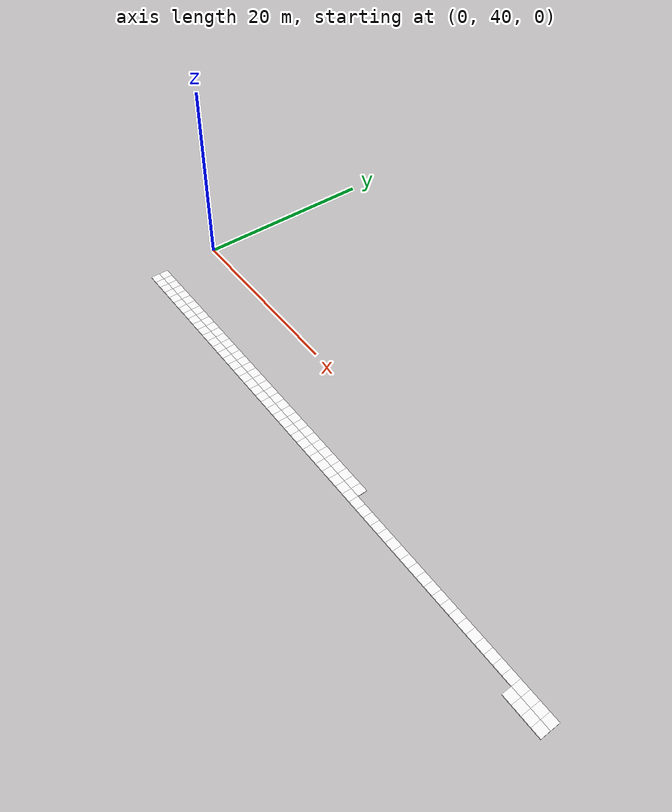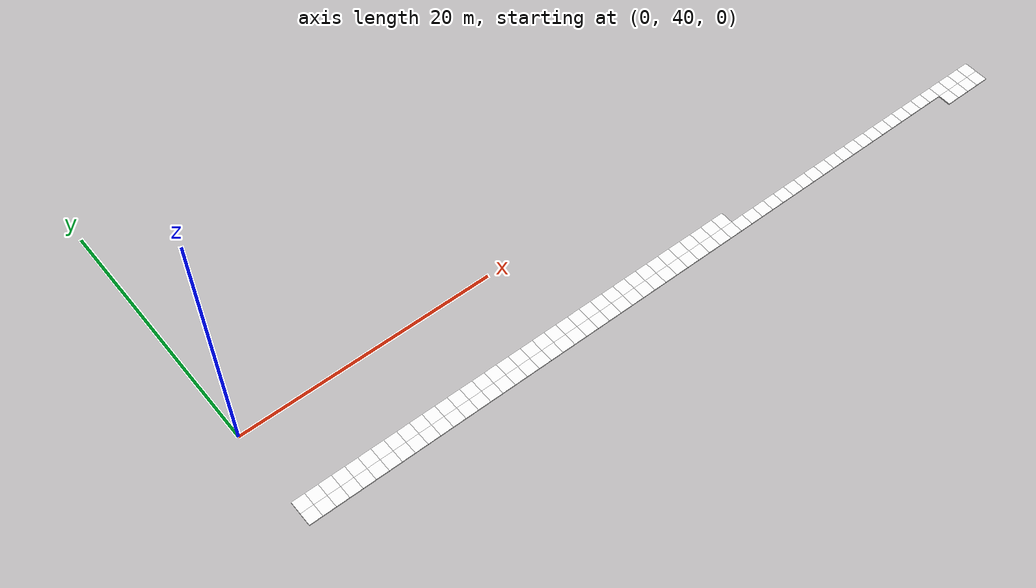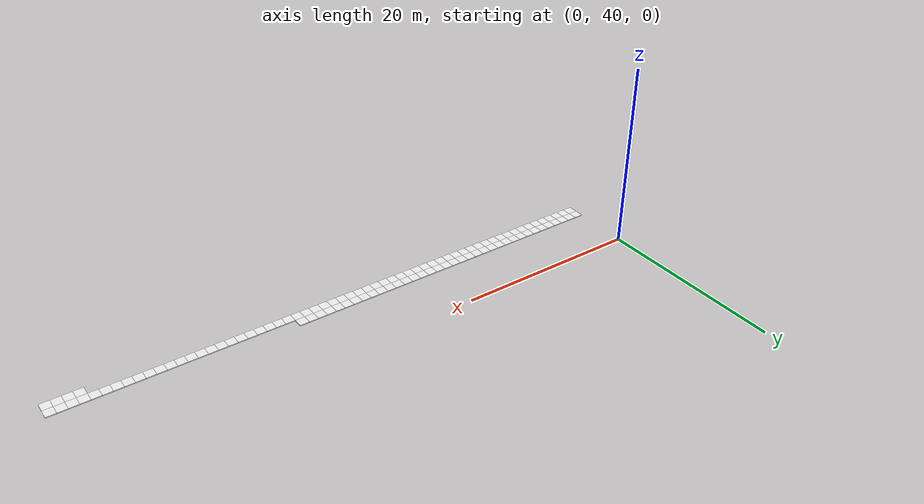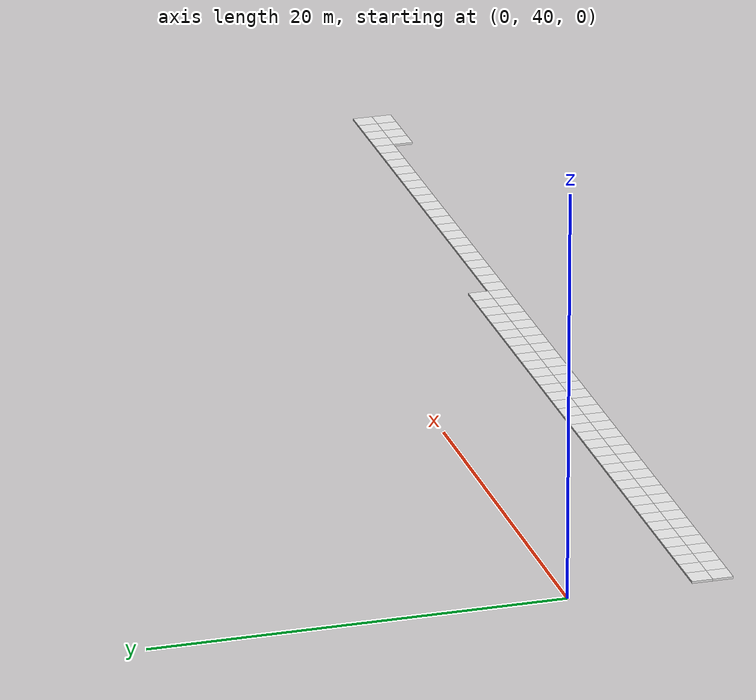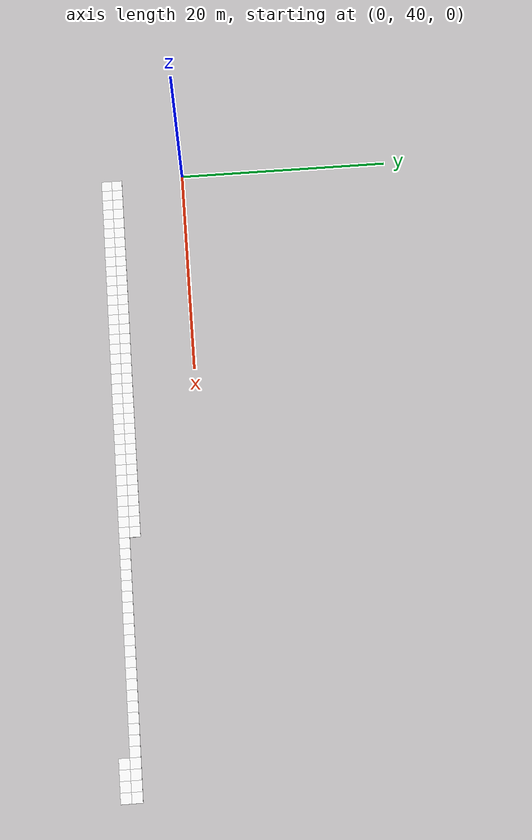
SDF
<sdf version="1.6">
 <world name="grid_world">
  <model name="cell_56_31">
   <static>true</static>
   <link name="link">
    <collision name="collision"><geometry><box><size>1 1 0.1</size></box></geometry></collision>
    <visual name="visual">
     <geometry><box><size>1 1 0.1</size></box></geometry>
     <material>
      <script><uri>file://media/materials/scripts/gazebo.material</uri><name>Gazebo/White</name></script>
     </material>
    </visual>
    <pose>56.5 31.5 0.05 0 0 0</pose>
   </link>
  </model>
  <model name="cell_57_31">
   <static>true</static>
   <link name="link">
    <collision name="collision"><geometry><box><size>1 1 0.1</size></box></geometry></collision>
    <visual name="visual">
     <geometry><box><size>1 1 0.1</size></box></geometry>
     <material>
      <script><uri>file://media/materials/scripts/gazebo.material</uri><name>Gazebo/White</name></script>
     </material>
    </visual>
    <pose>57.5 31.5 0.05 0 0 0</pose>
   </link>
  </model>
  <model name="cell_58_31">
   <static>true</static>
   <link name="link">
    <collision name="collision"><geometry><box><size>1 1 0.1</size></box></geometry></collision>
    <visual name="visual">
     <geometry><box><size>1 1 0.1</size></box></geometry>
     <material>
      <script><uri>file://media/materials/scripts/gazebo.material</uri><name>Gazebo/White</name></script>
     </material>
    </visual>
    <pose>58.5 31.5 0.05 0 0 0</pose>
   </link>
  </model>
  <model name="cell_59_31">
   <static>true</static>
   <link name="link">
    <collision name="collision"><geometry><box><size>1 1 0.1</size></box></geometry></collision>
    <visual name="visual">
     <geometry><box><size>1 1 0.1</size></box></geometry>
     <material>
      <script><uri>file://media/materials/scripts/gazebo.material</uri><name>Gazebo/White</name></script>
     </material>
    </visual>
    <pose>59.5 31.5 0.05 0 0 0</pose>
   </link>
  </model>
  <model name="cell_0_32">
   <static>true</static>
   <link name="link">
    <collision name="collision"><geometry><box><size>1 1 0.1</size></box></geometry></collision>
    <visual name="visual">
     <geometry><box><size>1 1 0.1</size></box></geometry>
     <material>
      <script><uri>file://media/materials/scripts/gazebo.material</uri><name>Gazebo/White</name></script>
     </material>
    </visual>
    <pose>0.5 32.5 0.05 0 0 0</pose>
   </link>
  </model>
  <model name="cell_1_32">
   <static>true</static>
   <link name="link">
    <collision name="collision"><geometry><box><size>1 1 0.1</size></box></geometry></collision>
    <visual name="visual">
     <geometry><box><size>1 1 0.1</size></box></geometry>
     <material>
      <script><uri>file://media/materials/scripts/gazebo.material</uri><name>Gazebo/White</name></script>
     </material>
    </visual>
    <pose>1.5 32.5 0.05 0 0 0</pose>
   </link>
  </model>
  <model name="cell_2_32">
   <static>true</static>
   <link name="link">
    <collision name="collision"><geometry><box><size>1 1 0.1</size></box></geometry></collision>
    <visual name="visual">
     <geometry><box><size>1 1 0.1</size></box></geometry>
     <material>
      <script><uri>file://media/materials/scripts/gazebo.material</uri><name>Gazebo/White</name></script>
     </material>
    </visual>
    <pose>2.5 32.5 0.05 0 0 0</pose>
   </link>
  </model>
  <model name="cell_3_32">
   <static>true</static>
   <link name="link">
    <collision name="collision"><geometry><box><size>1 1 0.1</size></box></geometry></collision>
    <visual name="visual">
     <geometry><box><size>1 1 0.1</size></box></geometry>
     <material>
      <script><uri>file://media/materials/scripts/gazebo.material</uri><name>Gazebo/White</name></script>
     </material>
    </visual>
    <pose>3.5 32.5 0.05 0 0 0</pose>
   </link>
  </model>
  <model name="cell_4_32">
   <static>true</static>
   <link name="link">
    <collision name="collision"><geometry><box><size>1 1 0.1</size></box></geometry></collision>
    <visual name="visual">
     <geometry><box><size>1 1 0.1</size></box></geometry>
     <material>
      <script><uri>file://media/materials/scripts/gazebo.material</uri><name>Gazebo/White</name></script>
     </material>
    </visual>
    <pose>4.5 32.5 0.05 0 0 0</pose>
   </link>
  </model>
  <model name="cell_5_32">
   <static>true</static>
   <link name="link">
    <collision name="collision"><geometry><box><size>1 1 0.1</size></box></geometry></collision>
    <visual name="visual">
     <geometry><box><size>1 1 0.1</size></box></geometry>
     <material>
      <script><uri>file://media/materials/scripts/gazebo.material</uri><name>Gazebo/White</name></script>
     </material>
    </visual>
    <pose>5.5 32.5 0.05 0 0 0</pose>
   </link>
  </model>
  <model name="cell_6_32">
   <static>true</static>
   <link name="link">
    <collision name="collision"><geometry><box><size>1 1 0.1</size></box></geometry></collision>
    <visual name="visual">
     <geometry><box><size>1 1 0.1</size></box></geometry>
     <material>
      <script><uri>file://media/materials/scripts/gazebo.material</uri><name>Gazebo/White</name></script>
     </material>
    </visual>
    <pose>6.5 32.5 0.05 0 0 0</pose>
   </link>
  </model>
  <model name="cell_7_32">
   <static>true</static>
   <link name="link">
    <collision name="collision"><geometry><box><size>1 1 0.1</size></box></geometry></collision>
    <visual name="visual">
     <geometry><box><size>1 1 0.1</size></box></geometry>
     <material>
      <script><uri>file://media/materials/scripts/gazebo.material</uri><name>Gazebo/White</name></script>
     </material>
    </visual>
    <pose>7.5 32.5 0.05 0 0 0</pose>
   </link>
  </model>
  <model name="cell_8_32">
   <static>true</static>
   <link name="link">
    <collision name="collision"><geometry><box><size>1 1 0.1</size></box></geometry></collision>
    <visual name="visual">
     <geometry><box><size>1 1 0.1</size></box></geometry>
     <material>
      <script><uri>file://media/materials/scripts/gazebo.material</uri><name>Gazebo/White</name></script>
     </material>
    </visual>
    <pose>8.5 32.5 0.05 0 0 0</pose>
   </link>
  </model>
  <model name="cell_9_32">
   <static>true</static>
   <link name="link">
    <collision name="collision"><geometry><box><size>1 1 0.1</size></box></geometry></collision>
    <visual name="visual">
     <geometry><box><size>1 1 0.1</size></box></geometry>
     <material>
      <script><uri>file://media/materials/scripts/gazebo.material</uri><name>Gazebo/White</name></script>
     </material>
    </visual>
    <pose>9.5 32.5 0.05 0 0 0</pose>
   </link>
  </model>
  <model name="cell_10_32">
   <static>true</static>
   <link name="link">
    <collision name="collision"><geometry><box><size>1 1 0.1</size></box></geometry></collision>
    <visual name="visual">
     <geometry><box><size>1 1 0.1</size></box></geometry>
     <material>
      <script><uri>file://media/materials/scripts/gazebo.material</uri><name>Gazebo/White</name></script>
     </material>
    </visual>
    <pose>10.5 32.5 0.05 0 0 0</pose>
   </link>
  </model>
  <model name="cell_11_32">
   <static>true</static>
   <link name="link">
    <collision name="collision"><geometry><box><size>1 1 0.1</size></box></geometry></collision>
    <visual name="visual">
     <geometry><box><size>1 1 0.1</size></box></geometry>
     <material>
      <script><uri>file://media/materials/scripts/gazebo.material</uri><name>Gazebo/White</name></script>
     </material>
    </visual>
    <pose>11.5 32.5 0.05 0 0 0</pose>
   </link>
  </model>
  <model name="cell_12_32">
   <static>true</static>
   <link name="link">
    <collision name="collision"><geometry><box><size>1 1 0.1</size></box></geometry></collision>
    <visual name="visual">
     <geometry><box><size>1 1 0.1</size></box></geometry>
     <material>
      <script><uri>file://media/materials/scripts/gazebo.material</uri><name>Gazebo/White</name></script>
     </material>
    </visual>
    <pose>12.5 32.5 0.05 0 0 0</pose>
   </link>
  </model>
  <model name="cell_13_32">
   <static>true</static>
   <link name="link">
    <collision name="collision"><geometry><box><size>1 1 0.1</size></box></geometry></collision>
    <visual name="visual">
     <geometry><box><size>1 1 0.1</size></box></geometry>
     <material>
      <script><uri>file://media/materials/scripts/gazebo.material</uri><name>Gazebo/White</name></script>
     </material>
    </visual>
    <pose>13.5 32.5 0.05 0 0 0</pose>
   </link>
  </model>
  <model name="cell_14_32">
   <static>true</static>
   <link name="link">
    <collision name="collision"><geometry><box><size>1 1 0.1</size></box></geometry></collision>
    <visual name="visual">
     <geometry><box><size>1 1 0.1</size></box></geometry>
     <material>
      <script><uri>file://media/materials/scripts/gazebo.material</uri><name>Gazebo/White</name></script>
     </material>
    </visual>
    <pose>14.5 32.5 0.05 0 0 0</pose>
   </link>
  </model>
  <model name="cell_15_32">
   <static>true</static>
   <link name="link">
    <collision name="collision"><geometry><box><size>1 1 0.1</size></box></geometry></collision>
    <visual name="visual">
     <geometry><box><size>1 1 0.1</size></box></geometry>
     <material>
      <script><uri>file://media/materials/scripts/gazebo.material</uri><name>Gazebo/White</name></script>
     </material>
    </visual>
    <pose>15.5 32.5 0.05 0 0 0</pose>
   </link>
  </model>
  <model name="cell_16_32">
   <static>true</static>
   <link name="link">
    <collision name="collision"><geometry><box><size>1 1 0.1</size></box></geometry></collision>
    <visual name="visual">
     <geometry><box><size>1 1 0.1</size></box></geometry>
     <material>
      <script><uri>file://media/materials/scripts/gazebo.material</uri><name>Gazebo/White</name></script>
     </material>
    </visual>
    <pose>16.5 32.5 0.05 0 0 0</pose>
   </link>
  </model>
  <model name="cell_17_32">
   <static>true</static>
   <link name="link">
    <collision name="collision"><geometry><box><size>1 1 0.1</size></box></geometry></collision>
    <visual name="visual">
     <geometry><box><size>1 1 0.1</size></box></geometry>
     <material>
      <script><uri>file://media/materials/scripts/gazebo.material</uri><name>Gazebo/White</name></script>
     </material>
    </visual>
    <pose>17.5 32.5 0.05 0 0 0</pose>
   </link>
  </model>
  <model name="cell_18_32">
   <static>true</static>
   <link name="link">
    <collision name="collision"><geometry><box><size>1 1 0.1</size></box></geometry></collision>
    <visual name="visual">
     <geometry><box><size>1 1 0.1</size></box></geometry>
     <material>
      <script><uri>file://media/materials/scripts/gazebo.material</uri><name>Gazebo/White</name></script>
     </material>
    </visual>
    <pose>18.5 32.5 0.05 0 0 0</pose>
   </link>
  </model>
  <model name="cell_19_32">
   <static>true</static>
   <link name="link">
    <collision name="collision"><geometry><box><size>1 1 0.1</size></box></geometry></collision>
    <visual name="visual">
     <geometry><box><size>1 1 0.1</size></box></geometry>
     <material>
      <script><uri>file://media/materials/scripts/gazebo.material</uri><name>Gazebo/White</name></script>
     </material>
    </visual>
    <pose>19.5 32.5 0.05 0 0 0</pose>
   </link>
  </model>
  <model name="cell_20_32">
   <static>true</static>
   <link name="link">
    <collision name="collision"><geometry><box><size>1 1 0.1</size></box></geometry></collision>
    <visual name="visual">
     <geometry><box><size>1 1 0.1</size></box></geometry>
     <material>
      <script><uri>file://media/materials/scripts/gazebo.material</uri><name>Gazebo/White</name></script>
     </material>
    </visual>
    <pose>20.5 32.5 0.05 0 0 0</pose>
   </link>
  </model>
  <model name="cell_21_32">
   <static>true</static>
   <link name="link">
    <collision name="collision"><geometry><box><size>1 1 0.1</size></box></geometry></collision>
    <visual name="visual">
     <geometry><box><size>1 1 0.1</size></box></geometry>
     <material>
      <script><uri>file://media/materials/scripts/gazebo.material</uri><name>Gazebo/White</name></script>
     </material>
    </visual>
    <pose>21.5 32.5 0.05 0 0 0</pose>
   </link>
  </model>
  <model name="cell_22_32">
   <static>true</static>
   <link name="link">
    <collision name="collision"><geometry><box><size>1 1 0.1</size></box></geometry></collision>
    <visual name="visual">
     <geometry><box><size>1 1 0.1</size></box></geometry>
     <material>
      <script><uri>file://media/materials/scripts/gazebo.material</uri><name>Gazebo/White</name></script>
     </material>
    </visual>
    <pose>22.5 32.5 0.05 0 0 0</pose>
   </link>
  </model>
  <model name="cell_23_32">
   <static>true</static>
   <link name="link">
    <collision name="collision"><geometry><box><size>1 1 0.1</size></box></geometry></collision>
    <visual name="visual">
     <geometry><box><size>1 1 0.1</size></box></geometry>
     <material>
      <script><uri>file://media/materials/scripts/gazebo.material</uri><name>Gazebo/White</name></script>
     </material>
    </visual>
    <pose>23.5 32.5 0.05 0 0 0</pose>
   </link>
  </model>
  <model name="cell_24_32">
   <static>true</static>
   <link name="link">
    <collision name="collision"><geometry><box><size>1 1 0.1</size></box></geometry></collision>
    <visual name="visual">
     <geometry><box><size>1 1 0.1</size></box></geometry>
     <material>
      <script><uri>file://media/materials/scripts/gazebo.material</uri><name>Gazebo/White</name></script>
     </material>
    </visual>
    <pose>24.5 32.5 0.05 0 0 0</pose>
   </link>
  </model>
  <model name="cell_25_32">
   <static>true</static>
   <link name="link">
    <collision name="collision"><geometry><box><size>1 1 0.1</size></box></geometry></collision>
    <visual name="visual">
     <geometry><box><size>1 1 0.1</size></box></geometry>
     <material>
      <script><uri>file://media/materials/scripts/gazebo.material</uri><name>Gazebo/White</name></script>
     </material>
    </visual>
    <pose>25.5 32.5 0.05 0 0 0</pose>
   </link>
  </model>
  <model name="cell_26_32">
   <static>true</static>
   <link name="link">
    <collision name="collision"><geometry><box><size>1 1 0.1</size></box></geometry></collision>
    <visual name="visual">
     <geometry><box><size>1 1 0.1</size></box></geometry>
     <material>
      <script><uri>file://media/materials/scripts/gazebo.material</uri><name>Gazebo/White</name></script>
     </material>
    </visual>
    <pose>26.5 32.5 0.05 0 0 0</pose>
   </link>
  </model>
  <model name="cell_27_32">
   <static>true</static>
   <link name="link">
    <collision name="collision"><geometry><box><size>1 1 0.1</size></box></geometry></collision>
    <visual name="visual">
     <geometry><box><size>1 1 0.1</size></box></geometry>
     <material>
      <script><uri>file://media/materials/scripts/gazebo.material</uri><name>Gazebo/White</name></script>
     </material>
    </visual>
    <pose>27.5 32.5 0.05 0 0 0</pose>
   </link>
  </model>
  <model name="cell_28_32">
   <static>true</static>
   <link name="link">
    <collision name="collision"><geometry><box><size>1 1 0.1</size></box></geometry></collision>
    <visual name="visual">
     <geometry><box><size>1 1 0.1</size></box></geometry>
     <material>
      <script><uri>file://media/materials/scripts/gazebo.material</uri><name>Gazebo/White</name></script>
     </material>
    </visual>
    <pose>28.5 32.5 0.05 0 0 0</pose>
   </link>
  </model>
  <model name="cell_29_32">
   <static>true</static>
   <link name="link">
    <collision name="collision"><geometry><box><size>1 1 0.1</size></box></geometry></collision>
    <visual name="visual">
     <geometry><box><size>1 1 0.1</size></box></geometry>
     <material>
      <script><uri>file://media/materials/scripts/gazebo.material</uri><name>Gazebo/White</name></script>
     </material>
    </visual>
    <pose>29.5 32.5 0.05 0 0 0</pose>
   </link>
  </model>
  <model name="cell_30_32">
   <static>true</static>
   <link name="link">
    <collision name="collision"><geometry><box><size>1 1 0.1</size></box></geometry></collision>
    <visual name="visual">
     <geometry><box><size>1 1 0.1</size></box></geometry>
     <material>
      <script><uri>file://media/materials/scripts/gazebo.material</uri><name>Gazebo/White</name></script>
     </material>
    </visual>
    <pose>30.5 32.5 0.05 0 0 0</pose>
   </link>
  </model>
  <model name="cell_31_32">
   <static>true</static>
   <link name="link">
    <collision name="collision"><geometry><box><size>1 1 0.1</size></box></geometry></collision>
    <visual name="visual">
     <geometry><box><size>1 1 0.1</size></box></geometry>
     <material>
      <script><uri>file://media/materials/scripts/gazebo.material</uri><name>Gazebo/White</name></script>
     </material>
    </visual>
    <pose>31.5 32.5 0.05 0 0 0</pose>
   </link>
  </model>
  <model name="cell_32_32">
   <static>true</static>
   <link name="link">
    <collision name="collision"><geometry><box><size>1 1 0.1</size></box></geometry></collision>
    <visual name="visual">
     <geometry><box><size>1 1 0.1</size></box></geometry>
     <material>
      <script><uri>file://media/materials/scripts/gazebo.material</uri><name>Gazebo/White</name></script>
     </material>
    </visual>
    <pose>32.5 32.5 0.05 0 0 0</pose>
   </link>
  </model>
  <model name="cell_33_32">
   <static>true</static>
   <link name="link">
    <collision name="collision"><geometry><box><size>1 1 0.1</size></box></geometry></collision>
    <visual name="visual">
     <geometry><box><size>1 1 0.1</size></box></geometry>
     <material>
      <script><uri>file://media/materials/scripts/gazebo.material</uri><name>Gazebo/White</name></script>
     </material>
    </visual>
    <pose>33.5 32.5 0.05 0 0 0</pose>
   </link>
  </model>
  <model name="cell_34_32">
   <static>true</static>
   <link name="link">
    <collision name="collision"><geometry><box><size>1 1 0.1</size></box></geometry></collision>
    <visual name="visual">
     <geometry><box><size>1 1 0.1</size></box></geometry>
     <material>
      <script><uri>file://media/materials/scripts/gazebo.material</uri><name>Gazebo/White</name></script>
     </material>
    </visual>
    <pose>34.5 32.5 0.05 0 0 0</pose>
   </link>
  </model>
  <model name="cell_35_32">
   <static>true</static>
   <link name="link">
    <collision name="collision"><geometry><box><size>1 1 0.1</size></box></geometry></collision>
    <visual name="visual">
     <geometry><box><size>1 1 0.1</size></box></geometry>
     <material>
      <script><uri>file://media/materials/scripts/gazebo.material</uri><name>Gazebo/White</name></script>
     </material>
    </visual>
    <pose>35.5 32.5 0.05 0 0 0</pose>
   </link>
  </model>
  <model name="cell_36_32">
   <static>true</static>
   <link name="link">
    <collision name="collision"><geometry><box><size>1 1 0.1</size></box></geometry></collision>
    <visual name="visual">
     <geometry><box><size>1 1 0.1</size></box></geometry>
     <material>
      <script><uri>file://media/materials/scripts/gazebo.material</uri><name>Gazebo/White</name></script>
     </material>
    </visual>
    <pose>36.5 32.5 0.05 0 0 0</pose>
   </link>
  </model>
  <model name="cell_37_32">
   <static>true</static>
   <link name="link">
    <collision name="collision"><geometry><box><size>1 1 0.1</size></box></geometry></collision>
    <visual name="visual">
     <geometry><box><size>1 1 0.1</size></box></geometry>
     <material>
      <script><uri>file://media/materials/scripts/gazebo.material</uri><name>Gazebo/White</name></script>
     </material>
    </visual>
    <pose>37.5 32.5 0.05 0 0 0</pose>
   </link>
  </model>
  <model name="cell_38_32">
   <static>true</static>
   <link name="link">
    <collision name="collision"><geometry><box><size>1 1 0.1</size></box></geometry></collision>
    <visual name="visual">
     <geometry><box><size>1 1 0.1</size></box></geometry>
     <material>
      <script><uri>file://media/materials/scripts/gazebo.material</uri><name>Gazebo/White</name></script>
     </material>
    </visual>
    <pose>38.5 32.5 0.05 0 0 0</pose>
   </link>
  </model>
  <model name="cell_39_32">
   <static>true</static>
   <link name="link">
    <collision name="collision"><geometry><box><size>1 1 0.1</size></box></geometry></collision>
    <visual name="visual">
     <geometry><box><size>1 1 0.1</size></box></geometry>
     <material>
      <script><uri>file://media/materials/scripts/gazebo.material</uri><name>Gazebo/White</name></script>
     </material>
    </visual>
    <pose>39.5 32.5 0.05 0 0 0</pose>
   </link>
  </model>
  <model name="cell_40_32">
   <static>true</static>
   <link name="link">
    <collision name="collision"><geometry><box><size>1 1 0.1</size></box></geometry></collision>
    <visual name="visual">
     <geometry><box><size>1 1 0.1</size></box></geometry>
     <material>
      <script><uri>file://media/materials/scripts/gazebo.material</uri><name>Gazebo/White</name></script>
     </material>
    </visual>
    <pose>40.5 32.5 0.05 0 0 0</pose>
   </link>
  </model>
  <model name="cell_41_32">
   <static>true</static>
   <link name="link">
    <collision name="collision"><geometry><box><size>1 1 0.1</size></box></geometry></collision>
    <visual name="visual">
     <geometry><box><size>1 1 0.1</size></box></geometry>
     <material>
      <script><uri>file://media/materials/scripts/gazebo.material</uri><name>Gazebo/White</name></script>
     </material>
    </visual>
    <pose>41.5 32.5 0.05 0 0 0</pose>
   </link>
  </model>
  <model name="cell_42_32">
   <static>true</static>
   <link name="link">
    <collision name="collision"><geometry><box><size>1 1 0.1</size></box></geometry></collision>
    <visual name="visual">
     <geometry><box><size>1 1 0.1</size></box></geometry>
     <material>
      <script><uri>file://media/materials/scripts/gazebo.material</uri><name>Gazebo/White</name></script>
     </material>
    </visual>
    <pose>42.5 32.5 0.05 0 0 0</pose>
   </link>
  </model>
  <model name="cell_43_32">
   <static>true</static>
   <link name="link">
    <collision name="collision"><geometry><box><size>1 1 0.1</size></box></geometry></collision>
    <visual name="visual">
     <geometry><box><size>1 1 0.1</size></box></geometry>
     <material>
      <script><uri>file://media/materials/scripts/gazebo.material</uri><name>Gazebo/White</name></script>
     </material>
    </visual>
    <pose>43.5 32.5 0.05 0 0 0</pose>
   </link>
  </model>
  <model name="cell_44_32">
   <static>true</static>
   <link name="link">
    <collision name="collision"><geometry><box><size>1 1 0.1</size></box></geometry></collision>
    <visual name="visual">
     <geometry><box><size>1 1 0.1</size></box></geometry>
     <material>
      <script><uri>file://media/materials/scripts/gazebo.material</uri><name>Gazebo/White</name></script>
     </material>
    </visual>
    <pose>44.5 32.5 0.05 0 0 0</pose>
   </link>
  </model>
  <model name="cell_45_32">
   <static>true</static>
   <link name="link">
    <collision name="collision"><geometry><box><size>1 1 0.1</size></box></geometry></collision>
    <visual name="visual">
     <geometry><box><size>1 1 0.1</size></box></geometry>
     <material>
      <script><uri>file://media/materials/scripts/gazebo.material</uri><name>Gazebo/White</name></script>
     </material>
    </visual>
    <pose>45.5 32.5 0.05 0 0 0</pose>
   </link>
  </model>
  <model name="cell_46_32">
   <static>true</static>
   <link name="link">
    <collision name="collision"><geometry><box><size>1 1 0.1</size></box></geometry></collision>
    <visual name="visual">
     <geometry><box><size>1 1 0.1</size></box></geometry>
     <material>
      <script><uri>file://media/materials/scripts/gazebo.material</uri><name>Gazebo/White</name></script>
     </material>
    </visual>
    <pose>46.5 32.5 0.05 0 0 0</pose>
   </link>
  </model>
  <model name="cell_47_32">
   <static>true</static>
   <link name="link">
    <collision name="collision"><geometry><box><size>1 1 0.1</size></box></geometry></collision>
    <visual name="visual">
     <geometry><box><size>1 1 0.1</size></box></geometry>
     <material>
      <script><uri>file://media/materials/scripts/gazebo.material</uri><name>Gazebo/White</name></script>
     </material>
    </visual>
    <pose>47.5 32.5 0.05 0 0 0</pose>
   </link>
  </model>
  <model name="cell_48_32">
   <static>true</static>
   <link name="link">
    <collision name="collision"><geometry><box><size>1 1 0.1</size></box></geometry></collision>
    <visual name="visual">
     <geometry><box><size>1 1 0.1</size></box></geometry>
     <material>
      <script><uri>file://media/materials/scripts/gazebo.material</uri><name>Gazebo/White</name></script>
     </material>
    </visual>
    <pose>48.5 32.5 0.05 0 0 0</pose>
   </link>
  </model>
  <model name="cell_49_32">
   <static>true</static>
   <link name="link">
    <collision name="collision"><geometry><box><size>1 1 0.1</size></box></geometry></collision>
    <visual name="visual">
     <geometry><box><size>1 1 0.1</size></box></geometry>
     <material>
      <script><uri>file://media/materials/scripts/gazebo.material</uri><name>Gazebo/White</name></script>
     </material>
    </visual>
    <pose>49.5 32.5 0.05 0 0 0</pose>
   </link>
  </model>
  <model name="cell_50_32">
   <static>true</static>
   <link name="link">
    <collision name="collision"><geometry><box><size>1 1 0.1</size></box></geometry></collision>
    <visual name="visual">
     <geometry><box><size>1 1 0.1</size></box></geometry>
     <material>
      <script><uri>file://media/materials/scripts/gazebo.material</uri><name>Gazebo/White</name></script>
     </material>
    </visual>
    <pose>50.5 32.5 0.05 0 0 0</pose>
   </link>
  </model>
  <model name="cell_51_32">
   <static>true</static>
   <link name="link">
    <collision name="collision"><geometry><box><size>1 1 0.1</size></box></geometry></collision>
    <visual name="visual">
     <geometry><box><size>1 1 0.1</size></box></geometry>
     <material>
      <script><uri>file://media/materials/scripts/gazebo.material</uri><name>Gazebo/White</name></script>
     </material>
    </visual>
    <pose>51.5 32.5 0.05 0 0 0</pose>
   </link>
  </model>
  <model name="cell_52_32">
   <static>true</static>
   <link name="link">
    <collision name="collision"><geometry><box><size>1 1 0.1</size></box></geometry></collision>
    <visual name="visual">
     <geometry><box><size>1 1 0.1</size></box></geometry>
     <material>
      <script><uri>file://media/materials/scripts/gazebo.material</uri><name>Gazebo/White</name></script>
     </material>
    </visual>
    <pose>52.5 32.5 0.05 0 0 0</pose>
   </link>
  </model>
  <model name="cell_53_32">
   <static>true</static>
   <link name="link">
    <collision name="collision"><geometry><box><size>1 1 0.1</size></box></geometry></collision>
    <visual name="visual">
     <geometry><box><size>1 1 0.1</size></box></geometry>
     <material>
      <script><uri>file://media/materials/scripts/gazebo.material</uri><name>Gazebo/White</name></script>
     </material>
    </visual>
    <pose>53.5 32.5 0.05 0 0 0</pose>
   </link>
  </model>
  <model name="cell_54_32">
   <static>true</static>
   <link name="link">
    <collision name="collision"><geometry><box><size>1 1 0.1</size></box></geometry></collision>
    <visual name="visual">
     <geometry><box><size>1 1 0.1</size></box></geometry>
     <material>
      <script><uri>file://media/materials/scripts/gazebo.material</uri><name>Gazebo/White</name></script>
     </material>
    </visual>
    <pose>54.5 32.5 0.05 0 0 0</pose>
   </link>
  </model>
  <model name="cell_55_32">
   <static>true</static>
   <link name="link">
    <collision name="collision"><geometry><box><size>1 1 0.1</size></box></geometry></collision>
    <visual name="visual">
     <geometry><box><size>1 1 0.1</size></box></geometry>
     <material>
      <script><uri>file://media/materials/scripts/gazebo.material</uri><name>Gazebo/White</name></script>
     </material>
    </visual>
    <pose>55.5 32.5 0.05 0 0 0</pose>
   </link>
  </model>
  <model name="cell_56_32">
   <static>true</static>
   <link name="link">
    <collision name="collision"><geometry><box><size>1 1 0.1</size></box></geometry></collision>
    <visual name="visual">
     <geometry><box><size>1 1 0.1</size></box></geometry>
     <material>
      <script><uri>file://media/materials/scripts/gazebo.material</uri><name>Gazebo/White</name></script>
     </material>
    </visual>
    <pose>56.5 32.5 0.05 0 0 0</pose>
   </link>
  </model>
  <model name="cell_57_32">
   <static>true</static>
   <link name="link">
    <collision name="collision"><geometry><box><size>1 1 0.1</size></box></geometry></collision>
    <visual name="visual">
     <geometry><box><size>1 1 0.1</size></box></geometry>
     <material>
      <script><uri>file://media/materials/scripts/gazebo.material</uri><name>Gazebo/White</name></script>
     </material>
    </visual>
    <pose>57.5 32.5 0.05 0 0 0</pose>
   </link>
  </model>
  <model name="cell_58_32">
   <static>true</static>
   <link name="link">
    <collision name="collision"><geometry><box><size>1 1 0.1</size></box></geometry></collision>
    <visual name="visual">
     <geometry><box><size>1 1 0.1</size></box></geometry>
     <material>
      <script><uri>file://media/materials/scripts/gazebo.material</uri><name>Gazebo/White</name></script>
     </material>
    </visual>
    <pose>58.5 32.5 0.05 0 0 0</pose>
   </link>
  </model>
  <model name="cell_59_32">
   <static>true</static>
   <link name="link">
    <collision name="collision"><geometry><box><size>1 1 0.1</size></box></geometry></collision>
    <visual name="visual">
     <geometry><box><size>1 1 0.1</size></box></geometry>
     <material>
      <script><uri>file://media/materials/scripts/gazebo.material</uri><name>Gazebo/White</name></script>
     </material>
    </visual>
    <pose>59.5 32.5 0.05 0 0 0</pose>
   </link>
  </model>
  <model name="cell_0_33">
   <static>true</static>
   <link name="link">
    <collision name="collision"><geometry><box><size>1 1 0.1</size></box></geometry></collision>
    <visual name="visual">
     <geometry><box><size>1 1 0.1</size></box></geometry>
     <material>
      <script><uri>file://media/materials/scripts/gazebo.material</uri><name>Gazebo/White</name></script>
     </material>
    </visual>
    <pose>0.5 33.5 0.05 0 0 0</pose>
   </link>
  </model>
  <model name="cell_1_33">
   <static>true</static>
   <link name="link">
    <collision name="collision"><geometry><box><size>1 1 0.1</size></box></geometry></collision>
    <visual name="visual">
     <geometry><box><size>1 1 0.1</size></box></geometry>
     <material>
      <script><uri>file://media/materials/scripts/gazebo.material</uri><name>Gazebo/White</name></script>
     </material>
    </visual>
    <pose>1.5 33.5 0.05 0 0 0</pose>
   </link>
  </model>
  <model name="cell_2_33">
   <static>true</static>
   <link name="link">
    <collision name="collision"><geometry><box><size>1 1 0.1</size></box></geometry></collision>
    <visual name="visual">
     <geometry><box><size>1 1 0.1</size></box></geometry>
     <material>
      <script><uri>file://media/materials/scripts/gazebo.material</uri><name>Gazebo/White</name></script>
     </material>
    </visual>
    <pose>2.5 33.5 0.05 0 0 0</pose>
   </link>
  </model>
  <model name="cell_3_33">
   <static>true</static>
   <link name="link">
    <collision name="collision"><geometry><box><size>1 1 0.1</size></box></geometry></collision>
    <visual name="visual">
     <geometry><box><size>1 1 0.1</size></box></geometry>
     <material>
      <script><uri>file://media/materials/scripts/gazebo.material</uri><name>Gazebo/White</name></script>
     </material>
    </visual>
    <pose>3.5 33.5 0.05 0 0 0</pose>
   </link>
  </model>
  <model name="cell_4_33">
   <static>true</static>
   <link name="link">
    <collision name="collision"><geometry><box><size>1 1 0.1</size></box></geometry></collision>
    <visual name="visual">
     <geometry><box><size>1 1 0.1</size></box></geometry>
     <material>
      <script><uri>file://media/materials/scripts/gazebo.material</uri><name>Gazebo/White</name></script>
     </material>
    </visual>
    <pose>4.5 33.5 0.05 0 0 0</pose>
   </link>
  </model>
  <model name="cell_5_33">
   <static>true</static>
   <link name="link">
    <collision name="collision"><geometry><box><size>1 1 0.1</size></box></geometry></collision>
    <visual name="visual">
     <geometry><box><size>1 1 0.1</size></box></geometry>
     <material>
      <script><uri>file://media/materials/scripts/gazebo.material</uri><name>Gazebo/White</name></script>
     </material>
    </visual>
    <pose>5.5 33.5 0.05 0 0 0</pose>
   </link>
  </model>
  <model name="cell_6_33">
   <static>true</static>
   <link name="link">
    <collision name="collision"><geometry><box><size>1 1 0.1</size></box></geometry></collision>
    <visual name="visual">
     <geometry><box><size>1 1 0.1</size></box></geometry>
     <material>
      <script><uri>file://media/materials/scripts/gazebo.material</uri><name>Gazebo/White</name></script>
     </material>
    </visual>
    <pose>6.5 33.5 0.05 0 0 0</pose>
   </link>
  </model>
  <model name="cell_7_33">
   <static>true</static>
   <link name="link">
    <collision name="collision"><geometry><box><size>1 1 0.1</size></box></geometry></collision>
    <visual name="visual">
     <geometry><box><size>1 1 0.1</size></box></geometry>
     <material>
      <script><uri>file://media/materials/scripts/gazebo.material</uri><name>Gazebo/White</name></script>
     </material>
    </visual>
    <pose>7.5 33.5 0.05 0 0 0</pose>
   </link>
  </model>
  <model name="cell_8_33">
   <static>true</static>
   <link name="link">
    <collision name="collision"><geometry><box><size>1 1 0.1</size></box></geometry></collision>
    <visual name="visual">
     <geometry><box><size>1 1 0.1</size></box></geometry>
     <material>
      <script><uri>file://media/materials/scripts/gazebo.material</uri><name>Gazebo/White</name></script>
     </material>
    </visual>
    <pose>8.5 33.5 0.05 0 0 0</pose>
   </link>
  </model>
  <model name="cell_9_33">
   <static>true</static>
   <link name="link">
    <collision name="collision"><geometry><box><size>1 1 0.1</size></box></geometry></collision>
    <visual name="visual">
     <geometry><box><size>1 1 0.1</size></box></geometry>
     <material>
      <script><uri>file://media/materials/scripts/gazebo.material</uri><name>Gazebo/White</name></script>
     </material>
    </visual>
    <pose>9.5 33.5 0.05 0 0 0</pose>
   </link>
  </model>
  <model name="cell_10_33">
   <static>true</static>
   <link name="link">
    <collision name="collision"><geometry><box><size>1 1 0.1</size></box></geometry></collision>
    <visual name="visual">
     <geometry><box><size>1 1 0.1</size></box></geometry>
     <material>
      <script><uri>file://media/materials/scripts/gazebo.material</uri><name>Gazebo/White</name></script>
     </material>
    </visual>
    <pose>10.5 33.5 0.05 0 0 0</pose>
   </link>
  </model>
  <model name="cell_11_33">
   <static>true</static>
   <link name="link">
    <collision name="collision"><geometry><box><size>1 1 0.1</size></box></geometry></collision>
    <visual name="visual">
     <geometry><box><size>1 1 0.1</size></box></geometry>
     <material>
      <script><uri>file://media/materials/scripts/gazebo.material</uri><name>Gazebo/White</name></script>
     </material>
    </visual>
    <pose>11.5 33.5 0.05 0 0 0</pose>
   </link>
  </model>
  <model name="cell_12_33">
   <static>true</static>
   <link name="link">
    <collision name="collision"><geometry><box><size>1 1 0.1</size></box></geometry></collision>
    <visual name="visual">
     <geometry><box><size>1 1 0.1</size></box></geometry>
     <material>
      <script><uri>file://media/materials/scripts/gazebo.material</uri><name>Gazebo/White</name></script>
     </material>
    </visual>
    <pose>12.5 33.5 0.05 0 0 0</pose>
   </link>
  </model>
  <model name="cell_13_33">
   <static>true</static>
   <link name="link">
    <collision name="collision"><geometry><box><size>1 1 0.1</size></box></geometry></collision>
    <visual name="visual">
     <geometry><box><size>1 1 0.1</size></box></geometry>
     <material>
      <script><uri>file://media/materials/scripts/gazebo.material</uri><name>Gazebo/White</name></script>
     </material>
    </visual>
    <pose>13.5 33.5 0.05 0 0 0</pose>
   </link>
  </model>
  <model name="cell_14_33">
   <static>true</static>
   <link name="link">
    <collision name="collision"><geometry><box><size>1 1 0.1</size></box></geometry></collision>
    <visual name="visual">
     <geometry><box><size>1 1 0.1</size></box></geometry>
     <material>
      <script><uri>file://media/materials/scripts/gazebo.material</uri><name>Gazebo/White</name></script>
     </material>
    </visual>
    <pose>14.5 33.5 0.05 0 0 0</pose>
   </link>
  </model>
  <model name="cell_15_33">
   <static>true</static>
   <link name="link">
    <collision name="collision"><geometry><box><size>1 1 0.1</size></box></geometry></collision>
    <visual name="visual">
     <geometry><box><size>1 1 0.1</size></box></geometry>
     <material>
      <script><uri>file://media/materials/scripts/gazebo.material</uri><name>Gazebo/White</name></script>
     </material>
    </visual>
    <pose>15.5 33.5 0.05 0 0 0</pose>
   </link>
  </model>
  <model name="cell_16_33">
   <static>true</static>
   <link name="link">
    <collision name="collision"><geometry><box><size>1 1 0.1</size></box></geometry></collision>
    <visual name="visual">
     <geometry><box><size>1 1 0.1</size></box></geometry>
     <material>
      <script><uri>file://media/materials/scripts/gazebo.material</uri><name>Gazebo/White</name></script>
     </material>
    </visual>
    <pose>16.5 33.5 0.05 0 0 0</pose>
   </link>
  </model>
  <model name="cell_17_33">
   <static>true</static>
   <link name="link">
    <collision name="collision"><geometry><box><size>1 1 0.1</size></box></geometry></collision>
    <visual name="visual">
     <geometry><box><size>1 1 0.1</size></box></geometry>
     <material>
      <script><uri>file://media/materials/scripts/gazebo.material</uri><name>Gazebo/White</name></script>
     </material>
    </visual>
    <pose>17.5 33.5 0.05 0 0 0</pose>
   </link>
  </model>
  <model name="cell_18_33">
   <static>true</static>
   <link name="link">
    <collision name="collision"><geometry><box><size>1 1 0.1</size></box></geometry></collision>
    <visual name="visual">
     <geometry><box><size>1 1 0.1</size></box></geometry>
     <material>
      <script><uri>file://media/materials/scripts/gazebo.material</uri><name>Gazebo/White</name></script>
     </material>
    </visual>
    <pose>18.5 33.5 0.05 0 0 0</pose>
   </link>
  </model>
  <model name="cell_19_33">
   <static>true</static>
   <link name="link">
    <collision name="collision"><geometry><box><size>1 1 0.1</size></box></geometry></collision>
    <visual name="visual">
     <geometry><box><size>1 1 0.1</size></box></geometry>
     <material>
      <script><uri>file://media/materials/scripts/gazebo.material</uri><name>Gazebo/White</name></script>
     </material>
    </visual>
    <pose>19.5 33.5 0.05 0 0 0</pose>
   </link>
  </model>
  <model name="cell_20_33">
   <static>true</static>
   <link name="link">
    <collision name="collision"><geometry><box><size>1 1 0.1</size></box></geometry></collision>
    <visual name="visual">
     <geometry><box><size>1 1 0.1</size></box></geometry>
     <material>
      <script><uri>file://media/materials/scripts/gazebo.material</uri><name>Gazebo/White</name></script>
     </material>
    </visual>
    <pose>20.5 33.5 0.05 0 0 0</pose>
   </link>
  </model>
  <model name="cell_21_33">
   <static>true</static>
   <link name="link">
    <collision name="collision"><geometry><box><size>1 1 0.1</size></box></geometry></collision>
    <visual name="visual">
     <geometry><box><size>1 1 0.1</size></box></geometry>
     <material>
      <script><uri>file://media/materials/scripts/gazebo.material</uri><name>Gazebo/White</name></script>
     </material>
    </visual>
    <pose>21.5 33.5 0.05 0 0 0</pose>
   </link>
  </model>
  <model name="cell_22_33">
   <static>true</static>
   <link name="link">
    <collision name="collision"><geometry><box><size>1 1 0.1</size></box></geometry></collision>
    <visual name="visual">
     <geometry><box><size>1 1 0.1</size></box></geometry>
     <material>
      <script><uri>file://media/materials/scripts/gazebo.material</uri><name>Gazebo/White</name></script>
     </material>
    </visual>
    <pose>22.5 33.5 0.05 0 0 0</pose>
   </link>
  </model>
  <model name="cell_23_33">
   <static>true</static>
   <link name="link">
    <collision name="collision"><geometry><box><size>1 1 0.1</size></box></geometry></collision>
    <visual name="visual">
     <geometry><box><size>1 1 0.1</size></box></geometry>
     <material>
      <script><uri>file://media/materials/scripts/gazebo.material</uri><name>Gazebo/White</name></script>
     </material>
    </visual>
    <pose>23.5 33.5 0.05 0 0 0</pose>
   </link>
  </model>
  <model name="cell_24_33">
   <static>true</static>
   <link name="link">
    <collision name="collision"><geometry><box><size>1 1 0.1</size></box></geometry></collision>
    <visual name="visual">
     <geometry><box><size>1 1 0.1</size></box></geometry>
     <material>
      <script><uri>file://media/materials/scripts/gazebo.material</uri><name>Gazebo/White</name></script>
     </material>
    </visual>
    <pose>24.5 33.5 0.05 0 0 0</pose>
   </link>
  </model>
  <model name="cell_25_33">
   <static>true</static>
   <link name="link">
    <collision name="collision"><geometry><box><size>1 1 0.1</size></box></geometry></collision>
    <visual name="visual">
     <geometry><box><size>1 1 0.1</size></box></geometry>
     <material>
      <script><uri>file://media/materials/scripts/gazebo.material</uri><name>Gazebo/White</name></script>
     </material>
    </visual>
    <pose>25.5 33.5 0.05 0 0 0</pose>
   </link>
  </model>
  <model name="cell_26_33">
   <static>true</static>
   <link name="link">
    <collision name="collision"><geometry><box><size>1 1 0.1</size></box></geometry></collision>
    <visual name="visual">
     <geometry><box><size>1 1 0.1</size></box></geometry>
     <material>
      <script><uri>file://media/materials/scripts/gazebo.material</uri><name>Gazebo/White</name></script>
     </material>
    </visual>
    <pose>26.5 33.5 0.05 0 0 0</pose>
   </link>
  </model>
  <model name="cell_27_33">
   <static>true</static>
   <link name="link">
    <collision name="collision"><geometry><box><size>1 1 0.1</size></box></geometry></collision>
    <visual name="visual">
     <geometry><box><size>1 1 0.1</size></box></geometry>
     <material>
      <script><uri>file://media/materials/scripts/gazebo.material</uri><name>Gazebo/White</name></script>
     </material>
    </visual>
    <pose>27.5 33.5 0.05 0 0 0</pose>
   </link>
  </model>
  <model name="cell_28_33">
   <static>true</static>
   <link name="link">
    <collision name="collision"><geometry><box><size>1 1 0.1</size></box></geometry></collision>
    <visual name="visual">
     <geometry><box><size>1 1 0.1</size></box></geometry>
     <material>
      <script><uri>file://media/materials/scripts/gazebo.material</uri><name>Gazebo/White</name></script>
     </material>
    </visual>
    <pose>28.5 33.5 0.05 0 0 0</pose>
   </link>
  </model>
  <model name="cell_29_33">
   <static>true</static>
   <link name="link">
    <collision name="collision"><geometry><box><size>1 1 0.1</size></box></geometry></collision>
    <visual name="visual">
     <geometry><box><size>1 1 0.1</size></box></geometry>
     <material>
      <script><uri>file://media/materials/scripts/gazebo.material</uri><name>Gazebo/White</name></script>
     </material>
    </visual>
    <pose>29.5 33.5 0.05 0 0 0</pose>
   </link>
  </model>
  <model name="cell_30_33">
   <static>true</static>
   <link name="link">
    <collision name="collision"><geometry><box><size>1 1 0.1</size></box></geometry></collision>
    <visual name="visual">
     <geometry><box><size>1 1 0.1</size></box></geometry>
     <material>
      <script><uri>file://media/materials/scripts/gazebo.material</uri><name>Gazebo/White</name></script>
     </material>
    </visual>
    <pose>30.5 33.5 0.05 0 0 0</pose>
   </link>
  </model>
  <model name="cell_31_33">
   <static>true</static>
   <link name="link">
    <collision name="collision"><geometry><box><size>1 1 0.1</size></box></geometry></collision>
    <visual name="visual">
     <geometry><box><size>1 1 0.1</size></box></geometry>
     <material>
      <script><uri>file://media/materials/scripts/gazebo.material</uri><name>Gazebo/White</name></script>
     </material>
    </visual>
    <pose>31.5 33.5 0.05 0 0 0</pose>
   </link>
  </model>
  <model name="cell_32_33">
   <static>true</static>
   <link name="link">
    <collision name="collision"><geometry><box><size>1 1 0.1</size></box></geometry></collision>
    <visual name="visual">
     <geometry><box><size>1 1 0.1</size></box></geometry>
     <material>
      <script><uri>file://media/materials/scripts/gazebo.material</uri><name>Gazebo/White</name></script>
     </material>
    </visual>
    <pose>32.5 33.5 0.05 0 0 0</pose>
   </link>
  </model>
  <model name="cell_33_33">
   <static>true</static>
   <link name="link">
    <collision name="collision"><geometry><box><size>1 1 0.1</size></box></geometry></collision>
    <visual name="visual">
     <geometry><box><size>1 1 0.1</size></box></geometry>
     <material>
      <script><uri>file://media/materials/scripts/gazebo.material</uri><name>Gazebo/White</name></script>
     </material>
    </visual>
    <pose>33.5 33.5 0.05 0 0 0</pose>
   </link>
  </model>
  <model name="cell_34_33">
   <static>true</static>
   <link name="link">
    <collision name="collision"><geometry><box><size>1 1 0.1</size></box></geometry></collision>
    <visual name="visual">
     <geometry><box><size>1 1 0.1</size></box></geometry>
     <material>
      <script><uri>file://media/materials/scripts/gazebo.material</uri><name>Gazebo/White</name></script>
     </material>
    </visual>
    <pose>34.5 33.5 0.05 0 0 0</pose>
   </link>
  </model>
  <model name="cell_35_33">
   <static>true</static>
   <link name="link">
    <collision name="collision"><geometry><box><size>1 1 0.1</size></box></geometry></collision>
    <visual name="visual">
     <geometry><box><size>1 1 0.1</size></box></geometry>
     <material>
      <script><uri>file://media/materials/scripts/gazebo.material</uri><name>Gazebo/White</name></script>
     </material>
    </visual>
    <pose>35.5 33.5 0.05 0 0 0</pose>
   </link>
  </model>
 </world>
</sdf>
